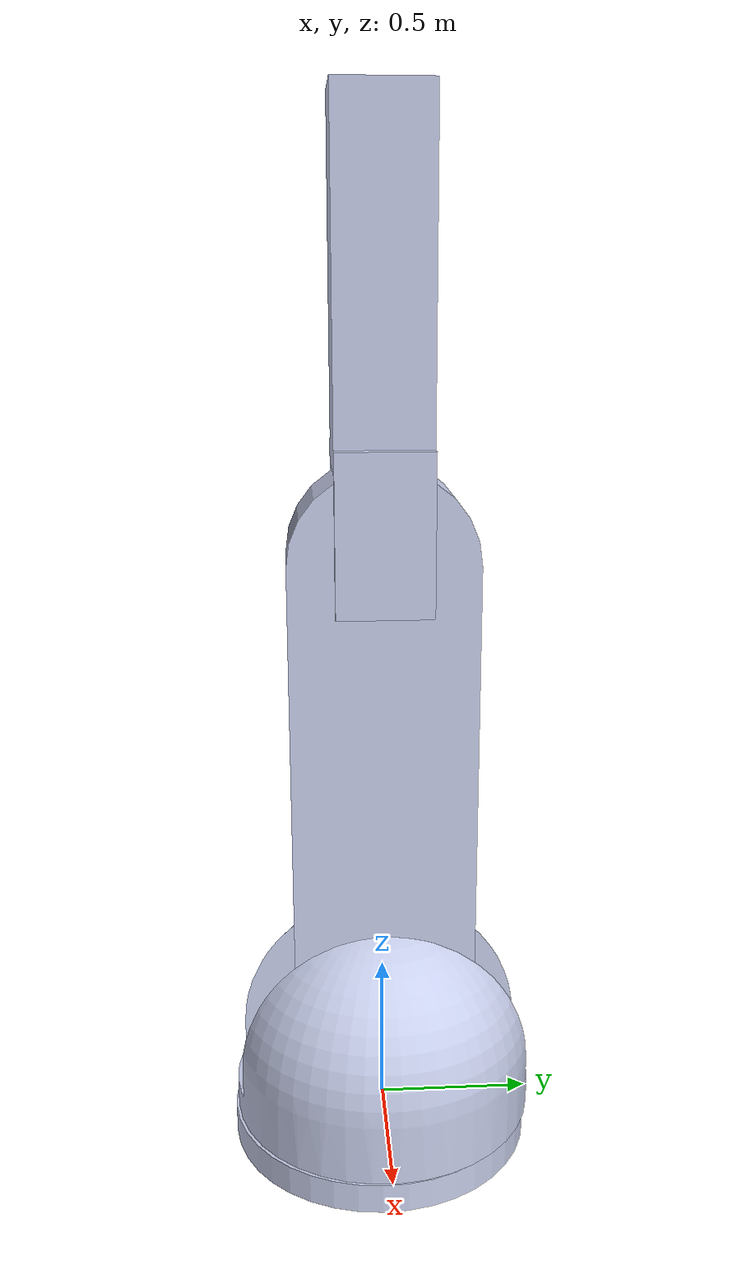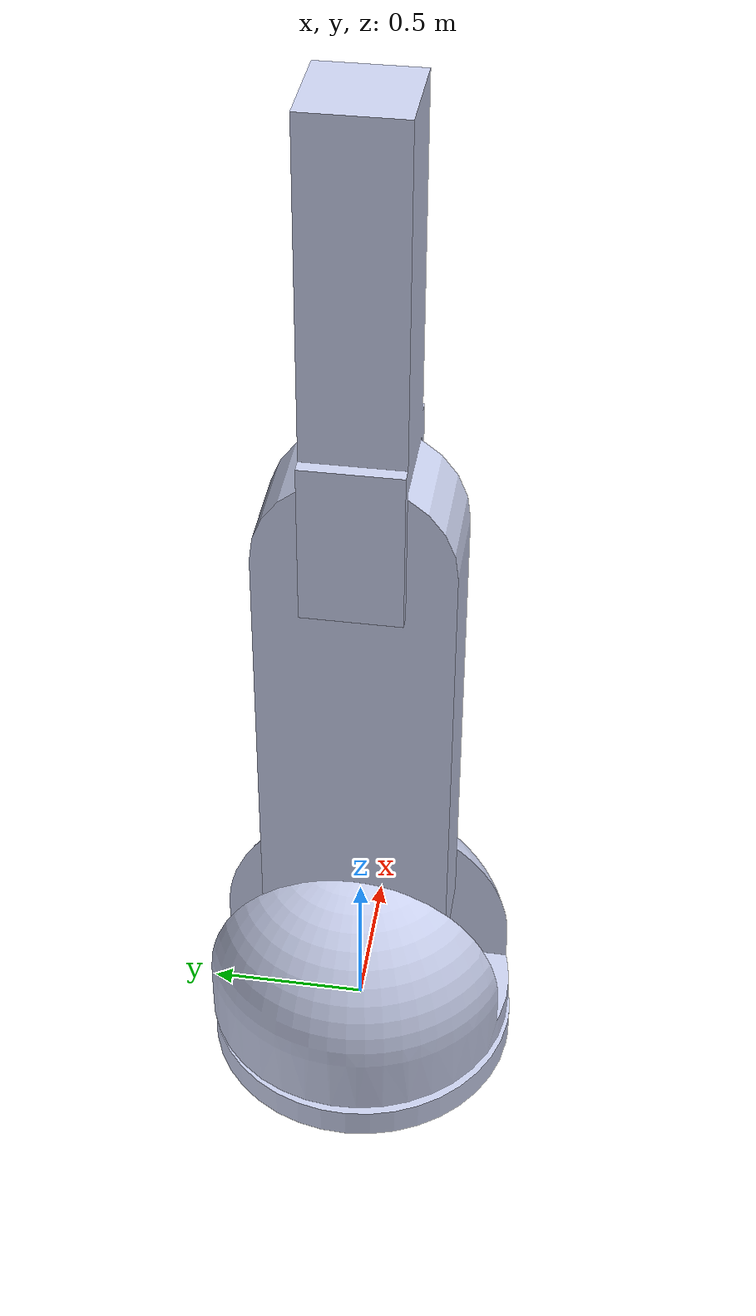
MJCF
<?xml version="1.0" ?>
<mujoco model="arm">
    <compiler angle="degree" inertiafromgeom="true"/>
    <size njmax="500" nconmax="100"/>
    <asset>
        <mesh name="base_link" file="base_link.STL"/>
        <mesh name="base" file="base.STL"/>
        <mesh name="lower" file="lower.STL"/>
        <mesh name="upper" file="upper.STL"/>
    </asset>
    <worldbody>
        <geom type="mesh" rgba="0.792157 0.819608 0.933333 1" mesh="base_link" pos="-.45 .75 -.6"/>
        <body name="base" pos="0 0 0" quat="1 1 0 0">
            <joint name="base" pos="0 0 0" axis="0 1 0" damping="10"/>
            <geom type="mesh" rgba="0.792157 0.819608 0.933333 1" mesh="base"/>
            <body name="lower" pos="0 0.4 0">
                <joint name="lower" pos="0 0 0" axis="1 0 0" range="-55 55" limited="true" damping="10"/>
                <geom type="mesh" rgba="0.792157 0.819608 0.933333 1" mesh="lower"/>
                <body name="upper" pos="0 1.5 0">
                    <camera name="camera" pos="0 0 0" quat="0 0 0 1"/>
                    <joint name="upper" pos="0 0 0" axis="1 0 0" range="-95 95" limited="true" damping="10"/>
                    <geom type="mesh" rgba="0.792157 0.819608 0.933333 1" mesh="upper"/>
                </body>
            </body>
        </body>
    </worldbody>
    <actuator>
        <motor gear="100" name="lower" joint="lower" ctrlrange="-100 100" ctrllimited="true"/>
        <motor gear="100" name="upper" joint="upper" ctrlrange="-100 100" ctrllimited="true"/>
        <motor gear="100" name="base" joint="base" ctrlrange="-100 100" ctrllimited="true" />
    </actuator>
</mujoco>
